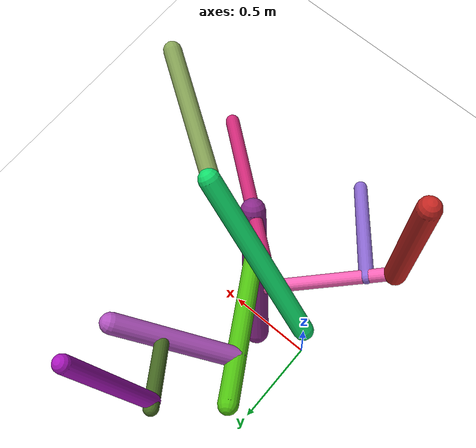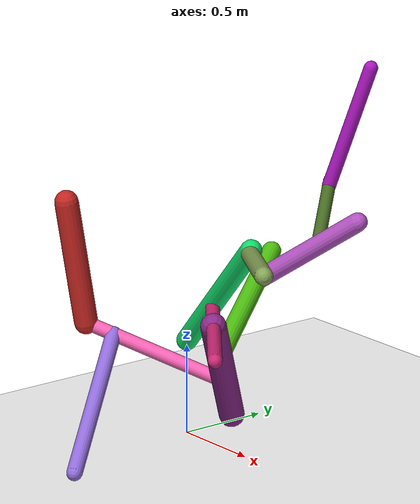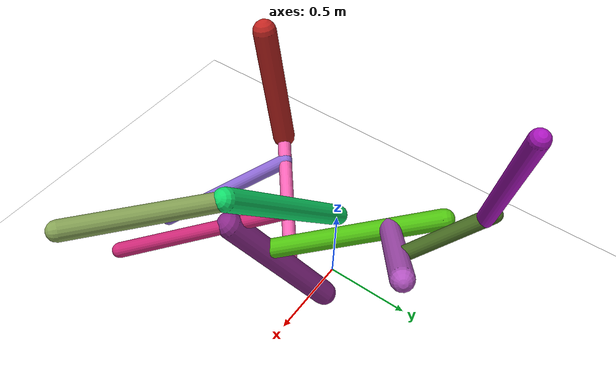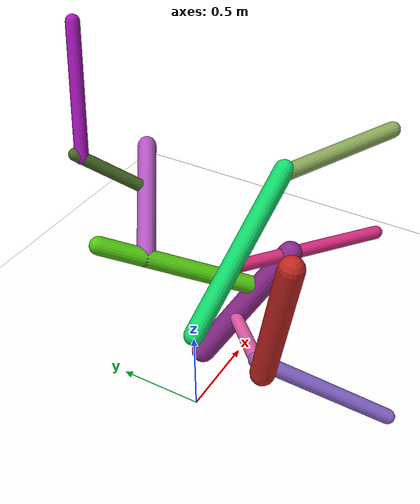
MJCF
<mujoco model="morphology">
  <option timestep="0.01"/>
  <default>
    <default class="/"/>
    <default class="0/"/>
    <default class="0/1/"/>
    <default class="0/2/"/>
    <default class="0/2/3/"/>
    <default class="0/2/3/4/"/>
    <default class="0/2/3/4/5/"/>
    <default class="0/2/3/4/6/"/>
    <default class="0/2/3/7/"/>
    <default class="0/2/3/7/8/"/>
    <default class="0/2/3/7/8/9/"/>
    <default class="0/2/3/7/8/9/10/"/>
  </default>
  <asset>
    <texture name="texplane" type="2d" builtin="checker" rgb1="0.10000000000000001 0.20000000000000001 0.29999999999999999" rgb2="0.20000000000000001 0.29999999999999999 0.40000000000000002" width="300" height="300"/>
    <material name="MatPlane" class="/" texture="texplane" texrepeat="20 20" specular="1" shininess="1" reflectance="0.5"/>
  </asset>
  <worldbody>
    <light name="//unnamed_light_0" class="/" directional="true" pos="0 0 1.5" dir="0 0 -1.3" cutoff="100" exponent="1" diffuse="1 1 1" specular="0.10000000000000001 0.10000000000000001 0.10000000000000001"/>
    <geom name="ground" class="/" type="plane" size="15 15 0.5" material="MatPlane" rgba="1 1 1 1"/>
    <site name="body" class="/" size="9.9999999999999995e-07 9.9999999999999995e-07 9.9999999999999995e-07" pos="0 0 0.52694455385208128"/>
    <body pos="0 0 0.52694455385208128" name="0/">
      <freejoint name="0/"/>
      <geom name="0/geom" class="0/" type="capsule" contype="1" conaffinity="1" condim="3" size="0.057316353614960763" rgba="0.061540580960788294 0.85119428617438953 0.41198770707624977 1" friction="0.59999999999999998 0.10000000000000001 0.10000000000000001" fromto="0 0 0 0.72935303382419403 -0.14827335383772011 0.70364622586378989"/>
      <site name="0/end0" class="0/" size="0.0050000000000000001" pos="0.72935303382419403 -0.14827335383772011 0.70364622586378989"/>
      <site name="0/attach1" class="0/" size="9.9999999999999995e-07 9.9999999999999995e-07 9.9999999999999995e-07" pos="0.70784790050881652 -0.14390148165302591 0.6828990633892309"/>
      <body pos="0.70784790050881652 -0.14390148165302591 0.6828990633892309" name="0/1/">
        <joint name="0/1/joint/" class="0/" type="hinge" axis="0 1 0" limited="true" range="-58.447082983860774 58.447082983860774"/>
        <geom name="0/1/geom" class="0/1/" type="capsule" contype="1" conaffinity="1" condim="3" size="0.047112157862767901" rgba="0.52931158770059883 0.64124769159921435 0.33956867361391796 1" friction="0.59999999999999998 0.10000000000000001 0.10000000000000001" fromto="0 0 0 0.60254255935391932 -0.39553305100206509 0.095142293846997905"/>
        <site name="0/1/end1" class="0/1/" size="0.0050000000000000001" pos="0.60254255935391932 -0.39553305100206509 0.095142293846997905"/>
      </body>
      <site name="0/attach2" class="0/" size="9.9999999999999995e-07 9.9999999999999995e-07 9.9999999999999995e-07" pos="0.29623994575756185 -0.060223908397103766 0.285798660066515"/>
      <body pos="0.29623994575756185 -0.060223908397103766 0.285798660066515" name="0/2/">
        <joint name="0/2/joint/" class="0/" type="hinge" axis="0 1 0" limited="true" range="-33.429426819929134 33.429426819929134"/>
        <geom name="0/2/geom" class="0/2/" type="capsule" contype="1" conaffinity="1" condim="3" size="0.038022859199951728" rgba="0.80359791660232149 0.15236315178239268 0.46319287874761828 1" friction="0.59999999999999998 0.10000000000000001 0.10000000000000001" fromto="0 0 0 0.71723802731761865 -0.55107506808122331 -0.014713430143122208"/>
        <site name="0/2/end2" class="0/2/" size="0.0050000000000000001" pos="0.71723802731761865 -0.55107506808122331 -0.014713430143122208"/>
        <site name="0/2/attach3" class="0/2/" size="9.9999999999999995e-07 9.9999999999999995e-07 9.9999999999999995e-07" pos="0.28364150749566946 -0.21793011120507447 -0.00581862554309227"/>
        <body pos="0.28364150749566946 -0.21793011120507447 -0.00581862554309227" name="0/2/3/">
          <joint name="0/2/3/joint/" class="0/2/" type="hinge" axis="1.7347234759768071e-18 -0.026689991008635658 0.99964375873606037" limited="true" range="-34.713965579742705 34.713965579742705"/>
          <geom name="0/2/3/geom" class="0/2/3/" type="capsule" contype="1" conaffinity="1" condim="3" size="0.06928184498599077" rgba="0.5394990425261994 0.15917825987288614 0.53896039759960102 1" friction="0.59999999999999998 0.10000000000000001 0.10000000000000001" fromto="0 0 0 -0.32343082319039324 0.38305585440882406 -0.65581381603770073"/>
          <site name="0/2/3/end3" class="0/2/3/" size="0.0050000000000000001" pos="-0.32343082319039324 0.38305585440882406 -0.65581381603770073"/>
          <site name="0/2/3/attach4" class="0/2/3/" size="9.9999999999999995e-07 9.9999999999999995e-07 9.9999999999999995e-07" pos="-0.20018203426481077 0.23708593824239202 -0.40590486243209345"/>
          <body pos="-0.20018203426481077 0.23708593824239202 -0.40590486243209345" name="0/2/3/4/">
            <joint name="0/2/3/4/joint/" class="0/2/3/" type="hinge" axis="-0.92004810029588802 -0.19761097506482878 0.33832143839233003" limited="true" range="-64.369253031758106 64.369253031758106"/>
            <geom name="0/2/3/4/geom" class="0/2/3/4/" type="capsule" contype="1" conaffinity="1" condim="3" size="0.03794821088386529" rgba="0.97750158126065612 0.38696931938462464 0.71049365290694011 1" friction="0.59999999999999998 0.10000000000000001 0.10000000000000001" fromto="0 0 0 -0.58575743504134259 -0.48616619797257998 0.28058337701190017"/>
            <site name="0/2/3/4/end4" class="0/2/3/4/" size="0.0050000000000000001" pos="-0.58575743504134259 -0.48616619797257998 0.28058337701190017"/>
            <site name="0/2/3/4/attach5" class="0/2/3/4/" size="9.9999999999999995e-07 9.9999999999999995e-07 9.9999999999999995e-07" pos="-0.46701374728854267 -0.3876114656644063 0.22370402232445064"/>
            <body pos="-0.46701374728854267 -0.3876114656644063 0.22370402232445064" name="0/2/3/4/5/">
              <geom name="0/2/3/4/5/geom" class="0/2/3/4/5/" type="capsule" contype="1" conaffinity="1" condim="3" size="0.042288033470780341" rgba="0.56633650326536678 0.42339806542772662 0.85688935969369739 1" friction="0.59999999999999998 0.10000000000000001 0.10000000000000001" fromto="0 0 0 0.44562590259001333 -0.59165685549427627 -0.52472374829826074"/>
              <site name="0/2/3/4/5/end5" class="0/2/3/4/5/" size="0.0050000000000000001" pos="0.44562590259001333 -0.59165685549427627 -0.52472374829826074"/>
            </body>
            <site name="0/2/3/4/attach6" class="0/2/3/4/" size="9.9999999999999995e-07 9.9999999999999995e-07 9.9999999999999995e-07" pos="-0.58208265443676233 -0.48311620832151214 0.27882312218604688"/>
            <body pos="-0.58208265443676233 -0.48311620832151214 0.27882312218604688" name="0/2/3/4/6/">
              <joint name="0/2/3/4/6/joint/" class="0/2/3/4/" type="hinge" axis="0.69188807845359535 -0.62533283811888485 0.36090127246100423" limited="true" range="-40.485117279070224 40.485117279070224"/>
              <geom name="0/2/3/4/6/geom" class="0/2/3/4/6/" type="capsule" contype="1" conaffinity="1" condim="3" size="0.064062844971919095" rgba="0.76108665374967943 0.14817851380583802 0.13139339604951217 1" friction="0.59999999999999998 0.10000000000000001 0.10000000000000001" fromto="0 0 0 0.0039792372487609251 -0.12335700491204693 0.68909645534081165"/>
              <site name="0/2/3/4/6/end6" class="0/2/3/4/6/" size="0.0050000000000000001" pos="0.0039792372487609251 -0.12335700491204693 0.68909645534081165"/>
            </body>
          </body>
          <site name="0/2/3/attach7" class="0/2/3/" size="9.9999999999999995e-07 9.9999999999999995e-07 9.9999999999999995e-07" pos="-0.10773886986394854 0.12760071672105786 -0.21845981989005436"/>
          <body pos="-0.10773886986394854 0.12760071672105786 -0.21845981989005436" name="0/2/3/7/">
            <geom name="0/2/3/7/geom" class="0/2/3/7/" type="capsule" contype="1" conaffinity="1" condim="3" size="0.052818851286384777" rgba="0.31071178031899949 0.75905568967895731 0.062541063548223752 1" friction="0.59999999999999998 0.10000000000000001 0.10000000000000001" fromto="0 0 0 -0.47760696678174086 0.74077723458735045 0.32868148471467817"/>
            <site name="0/2/3/7/end7" class="0/2/3/7/" size="0.0050000000000000001" pos="-0.47760696678174086 0.74077723458735045 0.32868148471467817"/>
            <site name="0/2/3/7/attach8" class="0/2/3/7/" size="9.9999999999999995e-07 9.9999999999999995e-07 9.9999999999999995e-07" pos="-0.34137449227430194 0.52947814821382555 0.23492847208761986"/>
            <body pos="-0.34137449227430194 0.52947814821382555 0.23492847208761986" name="0/2/3/7/8/">
              <geom name="0/2/3/7/8/geom" class="0/2/3/7/8/" type="capsule" contype="1" conaffinity="1" condim="3" size="0.05319246228258917" rgba="0.69534844919501693 0.32384933693501128 0.75160279529307583 1" friction="0.59999999999999998 0.10000000000000001 0.10000000000000001" fromto="0 0 0 0.48108293665443314 0.29560156373216895 0.38239524974801209"/>
              <site name="0/2/3/7/8/end8" class="0/2/3/7/8/" size="0.0050000000000000001" pos="0.48108293665443314 0.29560156373216895 0.38239524974801209"/>
              <site name="0/2/3/7/8/attach9" class="0/2/3/7/8/" size="9.9999999999999995e-07 9.9999999999999995e-07 9.9999999999999995e-07" pos="0.29131858323374821 0.1790007963013511 0.23155849834666892"/>
              <body pos="0.29131858323374821 0.1790007963013511 0.23155849834666892" name="0/2/3/7/8/9/">
                <joint name="0/2/3/7/8/9/joint/" class="0/2/3/7/8/" type="hinge" axis="-0.70875128700640444 0.43145527480172058 0.55813793905497666" limited="true" range="-34.372840411943145 34.372840411943145"/>
                <geom name="0/2/3/7/8/9/geom" class="0/2/3/7/8/9/" type="capsule" contype="1" conaffinity="1" condim="3" size="0.036184706083949685" rgba="0.27538572259033367 0.41440872349309965 0.13402581113748202 1" friction="0.59999999999999998 0.10000000000000001 0.10000000000000001" fromto="0 0 0 -0.23911067922956453 0.28480765424742049 0.26092007171341081"/>
                <site name="0/2/3/7/8/9/end9" class="0/2/3/7/8/9/" size="0.0050000000000000001" pos="-0.23911067922956453 0.28480765424742049 0.26092007171341081"/>
                <site name="0/2/3/7/8/9/attach10" class="0/2/3/7/8/9/" size="9.9999999999999995e-07 9.9999999999999995e-07 9.9999999999999995e-07" pos="-0.21758618540059904 0.25916956641276906 0.23743231913145027"/>
                <body pos="-0.21758618540059904 0.25916956641276906 0.23743231913145027" name="0/2/3/7/8/9/10/">
                  <joint name="0/2/3/7/8/9/10/joint/" class="0/2/3/7/8/9/" type="hinge" axis="0 -0.67550849526395296 0.73735220405599289" limited="true" range="-44.305450943117719 44.305450943117719"/>
                  <geom name="0/2/3/7/8/9/10/geom" class="0/2/3/7/8/9/10/" type="capsule" contype="1" conaffinity="1" condim="3" size="0.038656955932453177" rgba="0.66632769290662008 0.084402527525654247 0.74061056602100805 1" friction="0.59999999999999998 0.10000000000000001 0.10000000000000001" fromto="0 0 0 0.1943269254946508 0.12023254018850404 0.67651875508482062"/>
                  <site name="0/2/3/7/8/9/10/end10" class="0/2/3/7/8/9/10/" size="0.0050000000000000001" pos="0.1943269254946508 0.12023254018850404 0.67651875508482062"/>
                </body>
              </body>
            </body>
          </body>
        </body>
      </body>
      <camera name="0/iso" class="0/" mode="trackcom" pos="-2.2999999999999998 -2.2999999999999998 1" xyaxes="0.45000000000000001 -0.45000000000000001 0 0.29999999999999999 0.14999999999999999 0.93999999999999995"/>
    </body>
  </worldbody>
  <actuator>
    <motor name="0/1/motor" class="0/1/" ctrllimited="true" ctrlrange="-1 1" gear="71" joint="0/1/joint/"/>
    <motor name="0/2/motor" class="0/2/" ctrllimited="true" ctrlrange="-1 1" gear="86" joint="0/2/joint/"/>
    <motor name="0/2/3/motor" class="0/2/3/" ctrllimited="true" ctrlrange="-1 1" gear="69" joint="0/2/3/joint/"/>
    <motor name="0/2/3/4/motor" class="0/2/3/4/" ctrllimited="true" ctrlrange="-1 1" gear="72" joint="0/2/3/4/joint/"/>
    <motor name="0/2/3/4/6/motor" class="0/2/3/4/6/" ctrllimited="true" ctrlrange="-1 1" gear="63" joint="0/2/3/4/6/joint/"/>
    <motor name="0/2/3/7/8/9/motor" class="0/2/3/7/8/9/" ctrllimited="true" ctrlrange="-1 1" gear="72" joint="0/2/3/7/8/9/joint/"/>
    <motor name="0/2/3/7/8/9/10/motor" class="0/2/3/7/8/9/10/" ctrllimited="true" ctrlrange="-1 1" gear="81" joint="0/2/3/7/8/9/10/joint/"/>
  </actuator>
  <sensor>
    <subtreelinvel name="velocity" body="0/"/>
  </sensor>
</mujoco>
